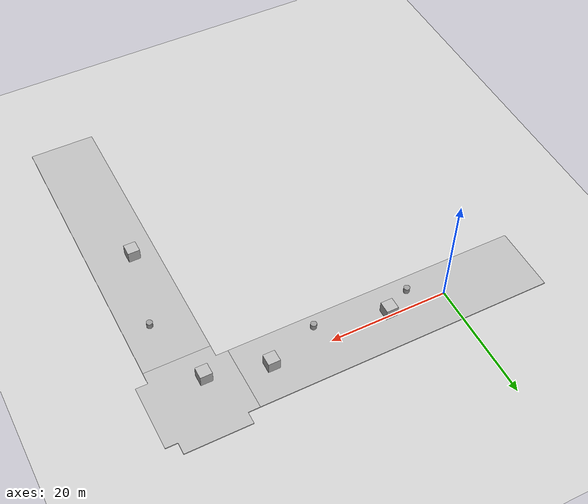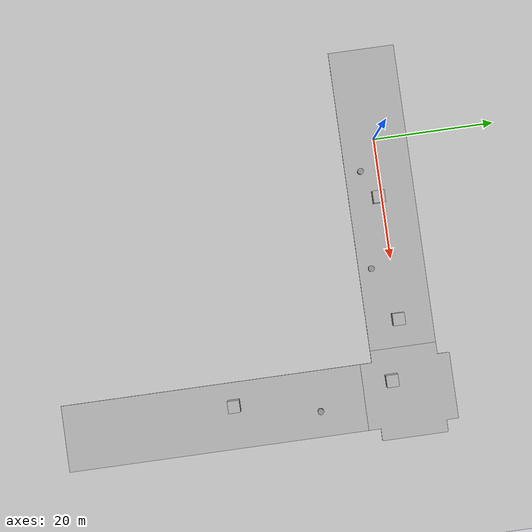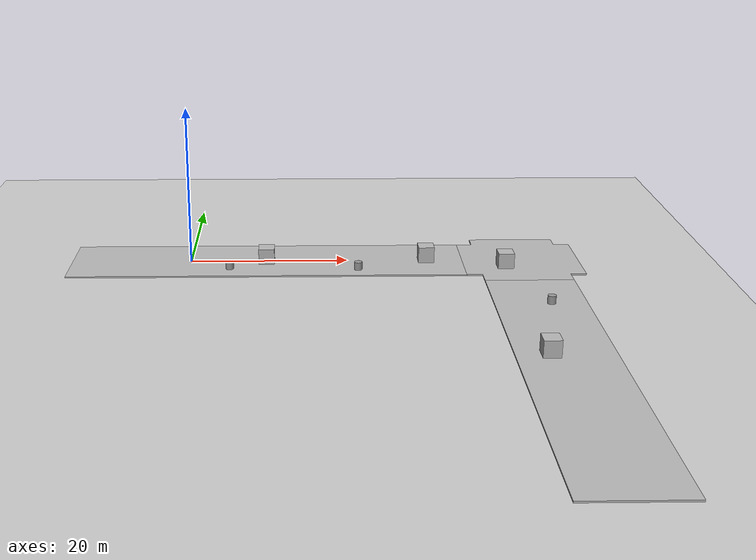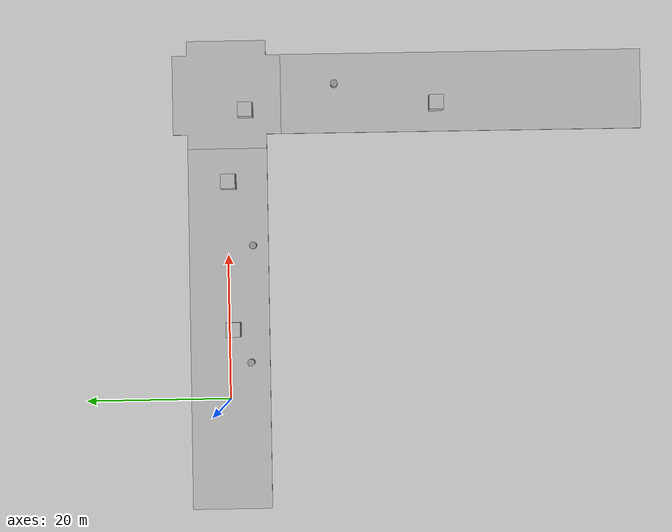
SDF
<sdf version="1.6">
 <world name="default">
  <light name="sun" type="directional">
   <pose>0 0 10 0 -0 0</pose>
   <diffuse>0.8 0.8 0.8 1</diffuse>
   <specular>0.1 0.1 0.1 1</specular>
   <attenuation>
    <range>1000</range>
    <constant>0.9</constant>
    <linear>0.01</linear>
    <quadratic>0.001</quadratic>
   </attenuation>
   <direction>-0.5 0.5 -1</direction>
  </light>
  <model name="ground_plane">
   <static>1</static>
   <link name="link">
    <collision name="collision">
     <geometry><plane><normal>0 0 1</normal><size>100 100</size></plane></geometry>
     <surface><friction><ode><mu>100</mu><mu2>50</mu2></ode></friction></surface>
    </collision>
    <visual name="visual">
     <cast_shadows>0</cast_shadows>
     <geometry><plane><normal>0 0 1</normal><size>100 100</size></plane></geometry>
     <material>
      <script><uri>file://media/materials/scripts/gazebo.material</uri><name>Gazebo/Grey</name></script>
     </material>
    </visual>
   </link>
  </model>
  <gravity>0 0 -9.8</gravity>
  <magnetic_field>6e-06 2.3e-05 -4.2e-05</magnetic_field>
  <atmosphere type="adiabatic"/>
  <physics name="default_physics" default="0" type="ode">
   <max_step_size>0.001</max_step_size>
   <real_time_factor>1</real_time_factor>
   <real_time_update_rate>1000</real_time_update_rate>
  </physics>
  <scene><ambient>0.4 0.4 0.4 1</ambient><background>0.7 0.7 0.7 1</background><shadows>1</shadows></scene>
  <spherical_coordinates>
   <surface_model>EARTH_WGS84</surface_model>
   <latitude_deg>0</latitude_deg>
   <longitude_deg>0</longitude_deg>
   <elevation>0</elevation>
   <heading_deg>0</heading_deg>
  </spherical_coordinates>
  <model name="(DS) Intersection">
   <static>1</static>
   <link name="link">
    <inertial>
     <mass>1</mass>
     <inertia><ixx>1</ixx><iyy>1</iyy><izz>1</izz><ixy>0</ixy><ixz>0</ixz><iyz>0</iyz></inertia>
    </inertial>
    <collision name="collision">
     <geometry>
      <mesh><uri>model://ds_intersection/meshes/intersection.dae</uri><scale>1 1 1</scale></mesh>
     </geometry>
    </collision>
    <visual name="visual">
     <geometry>
      <mesh><uri>model://ds_intersection/meshes/intersection.dae</uri><scale>1 1 1</scale></mesh>
     </geometry>
    </visual>
   </link>
   <pose>42.2552 -0.006737 0 0 -0 0</pose>
  </model>
  <model name="(DS) Straight Road - 50m">
   <static>1</static>
   <link name="link">
    <inertial>
     <mass>1</mass>
     <inertia><ixx>1</ixx><iyy>1</iyy><izz>1</izz><ixy>0</ixy><ixz>0</ixz><iyz>0</iyz></inertia>
    </inertial>
    <collision name="collision">
     <geometry>
      <mesh><uri>model://ds_straight_road_50m/meshes/straight_road_50m.dae</uri><scale>1 1 1</scale></mesh>
     </geometry>
    </collision>
    <visual name="visual">
     <geometry>
      <mesh><uri>model://ds_straight_road_50m/meshes/straight_road_50m.dae</uri><scale>1 1 1</scale></mesh>
     </geometry>
    </visual>
   </link>
   <pose>9.7749 9.98677 0 0 -0 0</pose>
  </model>
  <model name="(DS) Straight Road - 50m_0">
   <static>1</static>
   <link name="link">
    <inertial>
     <mass>1</mass>
     <inertia><ixx>1</ixx><iyy>1</iyy><izz>1</izz><ixy>0</ixy><ixz>0</ixz><iyz>0</iyz></inertia>
    </inertial>
    <collision name="collision">
     <geometry>
      <mesh><uri>model://ds_straight_road_50m/meshes/straight_road_50m.dae</uri><scale>1 1 1</scale></mesh>
     </geometry>
    </collision>
    <visual name="visual">
     <geometry>
      <mesh><uri>model://ds_straight_road_50m/meshes/straight_road_50m.dae</uri><scale>1 1 1</scale></mesh>
     </geometry>
    </visual>
   </link>
   <pose>32.2551 -32.4743 0 0 -0 1.5708</pose>
  </model>
  <model name="(DS) Cube">
   <static>0</static>
   <link name="link">
    <inertial>
     <pose>0 0 1 0 -0 0</pose>
     <mass>5</mass>
     <inertia><ixx>0.833</ixx><iyy>0.833</iyy><izz>0.833</izz><ixy>0</ixy><ixz>0</ixz><iyz>0</iyz></inertia>
    </inertial>
    <collision name="collision">
     <pose>0 0 1 0 -0 0</pose>
     <geometry><mesh><uri>model://ds_cube/meshes/ds_cube.dae</uri><scale>1 1 1</scale></mesh></geometry>
    </collision>
    <visual name="visual">
     <pose>0 0 1 0 -0 0</pose>
     <geometry><mesh><uri>model://ds_cube/meshes/ds_cube.dae</uri><scale>1 1 1</scale></mesh></geometry>
    </visual>
   </link>
   <pose>9.68244 -0.607075 0.099991 1e-06 -0 -1.5e-05</pose>
  </model>
  <model name="unit_cylinder_0">
   <pose>21.2922 -3.425 0.59999 0 -0 1.3e-05</pose>
   <link name="link">
    <inertial>
     <mass>1</mass>
     <inertia><ixx>0.145833</ixx><ixy>0</ixy><ixz>0</ixz><iyy>0.145833</iyy><iyz>0</iyz><izz>0.125</izz></inertia>
    </inertial>
    <collision name="collision">
     <geometry><cylinder><radius>0.5</radius><length>1</length></cylinder></geometry>
    </collision>
    <visual name="visual">
     <geometry><cylinder><radius>0.5</radius><length>1</length></cylinder></geometry>
     <material>
      <script><name>Gazebo/Grey</name><uri>file://media/materials/scripts/gazebo.material</uri></script>
     </material>
    </visual>
   </link>
  </model>
  <model name="(DS) Cube_0">
   <static>0</static>
   <link name="link">
    <inertial>
     <pose>0 0 1 0 -0 0</pose>
     <mass>5</mass>
     <inertia><ixx>0.833</ixx><iyy>0.833</iyy><izz>0.833</izz><ixy>0</ixy><ixz>0</ixz><iyz>0</iyz></inertia>
    </inertial>
    <collision name="collision">
     <pose>0 0 1 0 -0 0</pose>
     <geometry><mesh><uri>model://ds_cube/meshes/ds_cube.dae</uri><scale>1 1 1</scale></mesh></geometry>
    </collision>
    <visual name="visual">
     <pose>0 0 1 0 -0 0</pose>
     <geometry><mesh><uri>model://ds_cube/meshes/ds_cube.dae</uri><scale>1 1 1</scale></mesh></geometry>
    </visual>
   </link>
   <pose>30.0912 -0.20278 0.1 2e-06 2e-06 -1e-06</pose>
  </model>
  <model name="(DS) Cube_1">
   <static>0</static>
   <link name="link">
    <inertial>
     <pose>0 0 1 0 -0 0</pose>
     <mass>5</mass>
     <inertia><ixx>0.833</ixx><iyy>0.833</iyy><izz>0.833</izz><ixy>0</ixy><ixz>0</ixz><iyz>0</iyz></inertia>
    </inertial>
    <collision name="collision">
     <pose>0 0 1 0 -0 0</pose>
     <geometry><mesh><uri>model://ds_cube/meshes/ds_cube.dae</uri><scale>1 1 1</scale></mesh></geometry>
    </collision>
    <visual name="visual">
     <pose>0 0 1 0 -0 0</pose>
     <geometry><mesh><uri>model://ds_cube/meshes/ds_cube.dae</uri><scale>1 1 1</scale></mesh></geometry>
    </visual>
   </link>
   <pose>39.9617 -2.65821 0.09999 0 -0 2e-06</pose>
  </model>
  <model name="unit_cylinder_1">
   <pose>43.471 -14.9506 0.599992 -4e-06 -1e-06 4.2e-05</pose>
   <link name="link">
    <inertial>
     <mass>1</mass>
     <inertia><ixx>0.145833</ixx><ixy>0</ixy><ixz>0</ixz><iyy>0.145833</iyy><iyz>0</iyz><izz>0.125</izz></inertia>
    </inertial>
    <collision name="collision">
     <geometry><cylinder><radius>0.5</radius><length>1</length></cylinder></geometry>
    </collision>
    <visual name="visual">
     <geometry><cylinder><radius>0.5</radius><length>1</length></cylinder></geometry>
     <material>
      <script><name>Gazebo/Grey</name><uri>file://media/materials/scripts/gazebo.material</uri></script>
     </material>
    </visual>
   </link>
  </model>
  <model name="(DS) Cube_2">
   <static>0</static>
   <link name="link">
    <inertial>
     <pose>0 0 1 0 -0 0</pose>
     <mass>5</mass>
     <inertia><ixx>0.833</ixx><iyy>0.833</iyy><izz>0.833</izz><ixy>0</ixy><ixz>0</ixz><iyz>0</iyz></inertia>
    </inertial>
    <collision name="collision">
     <pose>0 0 1 0 -0 0</pose>
     <geometry><mesh><uri>model://ds_cube/meshes/ds_cube.dae</uri><scale>1 1 1</scale></mesh></geometry>
    </collision>
    <visual name="visual">
     <pose>0 0 1 0 -0 0</pose>
     <geometry><mesh><uri>model://ds_cube/meshes/ds_cube.dae</uri><scale>1 1 1</scale></mesh></geometry>
    </visual>
   </link>
   <pose>40.5623 -28.9882 0.099991 0 0 -1e-06</pose>
  </model>
  <model name="unit_cylinder_2">
   <pose>5.08864 -2.94984 0.599999 2e-06 -1e-06 -1.2e-05</pose>
   <link name="link">
    <inertial>
     <mass>1</mass>
     <inertia><ixx>0.145833</ixx><ixy>0</ixy><ixz>0</ixz><iyy>0.145833</iyy><iyz>0</iyz><izz>0.125</izz></inertia>
    </inertial>
    <collision name="collision">
     <geometry><cylinder><radius>0.5</radius><length>1</length></cylinder></geometry>
    </collision>
    <visual name="visual">
     <geometry><cylinder><radius>0.5</radius><length>1</length></cylinder></geometry>
     <material>
      <script><name>Gazebo/Grey</name><uri>file://media/materials/scripts/gazebo.material</uri></script>
     </material>
    </visual>
   </link>
  </model>
 </world>
</sdf>
